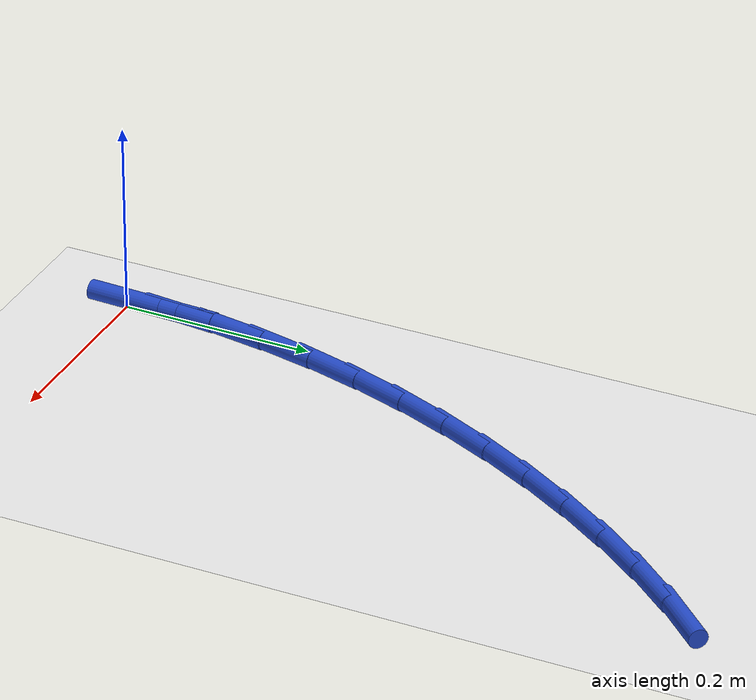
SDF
<sdf version="1.6">
 <world name="default">
  <model name="ground_plane">
   <static>1</static>
   <link name="link">
    <collision name="collision">
     <geometry><plane><normal>0 0 1</normal><size>100 100</size></plane></geometry>
     <surface><friction><ode><mu>100</mu><mu2>50</mu2></ode></friction></surface>
    </collision>
    <visual name="visual">
     <cast_shadows>0</cast_shadows>
     <geometry><plane><normal>0 0 1</normal><size>100 100</size></plane></geometry>
     <material>
      <script><uri>file://media/materials/scripts/gazebo.material</uri><name>Gazebo/WhiteGlow</name></script>
     </material>
    </visual>
   </link>
  </model>
  <model name="line">
   <link name="link_1">
    <pose>0.002290162110062586 0.06023191479590576 0.01 0 1.57 1.4727578169489852</pose>
    <collision name="collision">
     <geometry><cylinder><radius>0.01</radius><length>0.08</length></cylinder></geometry>
    </collision>
    <visual name="visual">
     <material>
      <script><name>Gazebo/Blue</name><uri>file://media/materials/scripts/gazebo.material</uri></script>
     </material>
     <geometry><cylinder><radius>0.01</radius><length>0.08</length></cylinder></geometry>
    </visual>
   </link>
   <link name="link_2">
    <pose>0.008158877332050856 0.11990133133398245 0.01 0 1.57 1.4133597335974601</pose>
    <collision name="collision">
     <geometry><cylinder><radius>0.01</radius><length>0.08</length></cylinder></geometry>
    </collision>
    <visual name="visual">
     <material>
      <script><name>Gazebo/Blue</name><uri>file://media/materials/scripts/gazebo.material</uri></script>
     </material>
     <geometry><cylinder><radius>0.01</radius><length>0.08</length></cylinder></geometry>
    </visual>
   </link>
   <link name="link_3">
    <pose>0.017532242029959323 0.17894600843398945 0.01 0 1.57 1.3548113329775864</pose>
    <collision name="collision">
     <geometry><cylinder><radius>0.01</radius><length>0.08</length></cylinder></geometry>
    </collision>
    <visual name="visual">
     <material>
      <script><name>Gazebo/Blue</name><uri>file://media/materials/scripts/gazebo.material</uri></script>
     </material>
     <geometry><cylinder><radius>0.01</radius><length>0.08</length></cylinder></geometry>
    </visual>
   </link>
   <link name="link_4">
    <pose>0.03033635256778251 0.23730370491568598 0.01 0 1.57 1.2972954607432465</pose>
    <collision name="collision">
     <geometry><cylinder><radius>0.01</radius><length>0.08</length></cylinder></geometry>
    </collision>
    <visual name="visual">
     <material>
      <script><name>Gazebo/Blue</name><uri>file://media/materials/scripts/gazebo.material</uri></script>
     </material>
     <geometry><cylinder><radius>0.01</radius><length>0.08</length></cylinder></geometry>
    </visual>
   </link>
   <link name="link_5">
    <pose>0.04649730530951487 0.2949121795988312 0.01 0 1.57 1.2409617552861898</pose>
    <collision name="collision">
     <geometry><cylinder><radius>0.01</radius><length>0.08</length></cylinder></geometry>
    </collision>
    <visual name="visual">
     <material>
      <script><name>Gazebo/Blue</name><uri>file://media/materials/scripts/gazebo.material</uri></script>
     </material>
     <geometry><cylinder><radius>0.01</radius><length>0.08</length></cylinder></geometry>
    </visual>
   </link>
   <link name="link_6">
    <pose>0.06594119661915096 0.3517091913031847 0.01 0 1.57 1.185925808714219</pose>
    <collision name="collision">
     <geometry><cylinder><radius>0.01</radius><length>0.08</length></cylinder></geometry>
    </collision>
    <visual name="visual">
     <material>
      <script><name>Gazebo/Blue</name><uri>file://media/materials/scripts/gazebo.material</uri></script>
     </material>
     <geometry><cylinder><radius>0.01</radius><length>0.08</length></cylinder></geometry>
    </visual>
   </link>
   <link name="link_7">
    <pose>0.08859412286068517 0.4076324988485053 0.01 0 1.57 1.1322699584301277</pose>
    <collision name="collision">
     <geometry><cylinder><radius>0.01</radius><length>0.08</length></cylinder></geometry>
    </collision>
    <visual name="visual">
     <material>
      <script><name>Gazebo/Blue</name><uri>file://media/materials/scripts/gazebo.material</uri></script>
     </material>
     <geometry><cylinder><radius>0.01</radius><length>0.08</length></cylinder></geometry>
    </visual>
   </link>
   <link name="link_8">
    <pose>0.1143821803981121 0.46261986105455233 0.01 0 1.57 1.0800368249711572</pose>
    <collision name="collision">
     <geometry><cylinder><radius>0.01</radius><length>0.08</length></cylinder></geometry>
    </collision>
    <visual name="visual">
     <material>
      <script><name>Gazebo/Blue</name><uri>file://media/materials/scripts/gazebo.material</uri></script>
     </material>
     <geometry><cylinder><radius>0.01</radius><length>0.08</length></cylinder></geometry>
    </visual>
   </link>
   <link name="link_9">
    <pose>0.14323114074342333 0.5166073183371971 0.01 0 1.57 1.0285396598223127</pose>
    <collision name="collision">
     <geometry><cylinder><radius>0.01</radius><length>0.08</length></cylinder></geometry>
    </collision>
    <visual name="visual">
     <material>
      <script><name>Gazebo/Blue</name><uri>file://media/materials/scripts/gazebo.material</uri></script>
     </material>
     <geometry><cylinder><radius>0.01</radius><length>0.08</length></cylinder></geometry>
    </visual>
   </link>
   <link name="link_10">
    <pose>0.17504350313190395 0.5694078052966423 0.01 0 1.57 0.9761860671432551</pose>
    <collision name="collision">
     <geometry><cylinder><radius>0.01</radius><length>0.08</length></cylinder></geometry>
    </collision>
    <visual name="visual">
     <material>
      <script><name>Gazebo/Blue</name><uri>file://media/materials/scripts/gazebo.material</uri></script>
     </material>
     <geometry><cylinder><radius>0.01</radius><length>0.08</length></cylinder></geometry>
    </visual>
   </link>
   <link name="link_11">
    <pose>0.20968333422129334 0.6206309556757391 0.01 0 1.57 0.9221101512290741</pose>
    <collision name="collision">
     <geometry><cylinder><radius>0.01</radius><length>0.08</length></cylinder></geometry>
    </collision>
    <visual name="visual">
     <material>
      <script><name>Gazebo/Blue</name><uri>file://media/materials/scripts/gazebo.material</uri></script>
     </material>
     <geometry><cylinder><radius>0.01</radius><length>0.08</length></cylinder></geometry>
    </visual>
   </link>
   <link name="link_12">
    <pose>0.24701110247445346 0.6698673694665417 0.01 0 1.57 0.8655350831002674</pose>
    <collision name="collision">
     <geometry><cylinder><radius>0.01</radius><length>0.08</length></cylinder></geometry>
    </collision>
    <visual name="visual">
     <material>
      <script><name>Gazebo/Blue</name><uri>file://media/materials/scripts/gazebo.material</uri></script>
     </material>
     <geometry><cylinder><radius>0.01</radius><length>0.08</length></cylinder></geometry>
    </visual>
   </link>
   <link name="link_13">
    <pose>0.2868872763542461 0.7167076466611029 0.01 0 1.57 0.8056652780205815</pose>
    <collision name="collision">
     <geometry><cylinder><radius>0.01</radius><length>0.08</length></cylinder></geometry>
    </collision>
    <visual name="visual">
     <material>
      <script><name>Gazebo/Blue</name><uri>file://media/materials/scripts/gazebo.material</uri></script>
     </material>
     <geometry><cylinder><radius>0.01</radius><length>0.08</length></cylinder></geometry>
    </visual>
   </link>
   <link name="link_120">
    <pose>1.3877787807814457e-17 1.1102230246251565e-16 0.01 0 1.57 1.5325564108471101</pose>
    <collision name="collision">
     <geometry><cylinder><radius>0.01</radius><length>0.08</length></cylinder></geometry>
    </collision>
    <visual name="visual">
     <material>
      <script><name>Gazebo/Blue</name><uri>file://media/materials/scripts/gazebo.material</uri></script>
     </material>
     <geometry><cylinder><radius>0.01</radius><length>0.08</length></cylinder></geometry>
    </visual>
   </link>
   <link name="link_121">
    <pose>0.0023021843471534333 0.060174349919339724 0.01 0 1.57 1.5325564108471104</pose>
    <collision name="collision">
     <geometry><cylinder><radius>0.01</radius><length>0.08</length></cylinder></geometry>
    </collision>
    <visual name="visual">
     <material>
      <script><name>Gazebo/Blue</name><uri>file://media/materials/scripts/gazebo.material</uri></script>
     </material>
     <geometry><cylinder><radius>0.01</radius><length>0.08</length></cylinder></geometry>
    </visual>
   </link>
  </model>
 </world>
</sdf>
